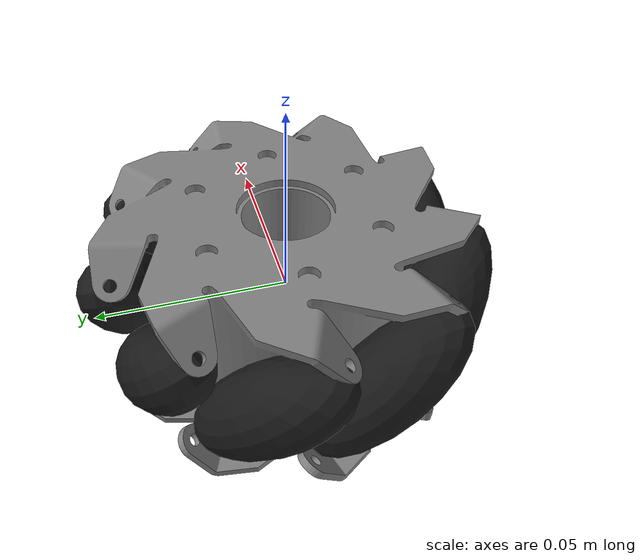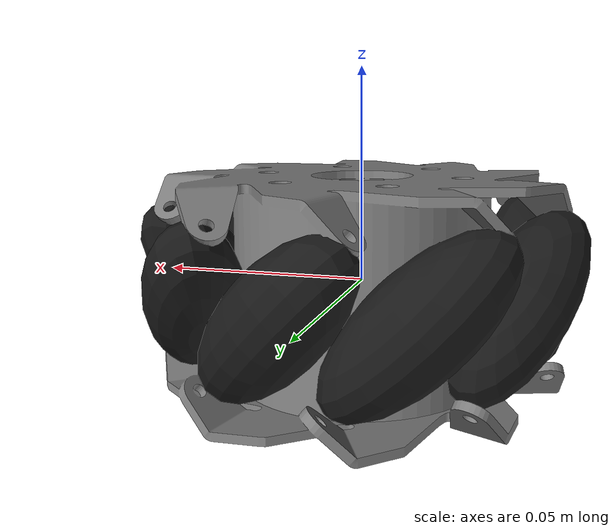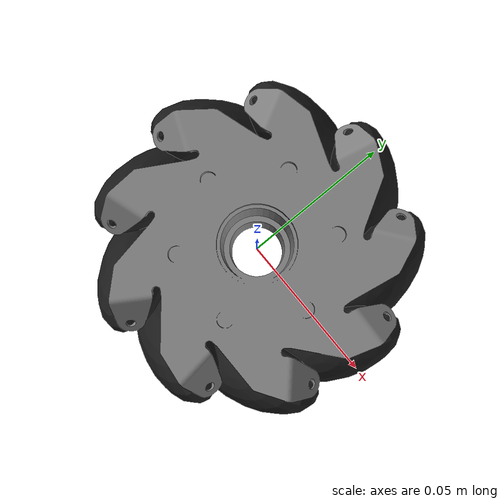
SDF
<?xml version="1.0"?>
<sdf version="1.9">
  <model name="mecanum_wheel_left">
    <link name="wheel_link">
      <pose>0 0 0 0 0 0</pose>
      <inertial>
        <pose>0 0 0 0 0 0</pose>
        <mass>0.045</mass>
        <inertia>
          <ixx>3.44913E-05</ixx>
          <ixy>0</ixy>
          <ixz>0</ixz>
          <iyy>3.44913E-05</iyy>
          <iyz>0</iyz>
          <izz>5.02327E-05</izz>
        </inertia>
      </inertial>
      <collision name="wheel1_collision">
        <pose>0 0 0.0225 0 0 0</pose>
        <geometry>
          <cylinder>
            <radius>0.04725</radius>
            <length>0.005</length>
          </cylinder>
        </geometry>
      </collision>
      <collision name="wheel2_collision">
        <pose>0 0 -0.0225 0 0 0</pose>
        <geometry>
          <cylinder>
            <radius>0.04725</radius>
            <length>0.005</length>
          </cylinder>
        </geometry>
      </collision>
      <visual name="wheel_visual">
        <geometry>
          <mesh>
            <uri>models://mecanum_wheel_left/meshes/mecanum_wheel_frame_left.stl</uri>
          </mesh>
        </geometry>
        <material>
          <ambient>0.5 0.5 0.5</ambient>
          <diffuse>0.5 0.5 0.5</diffuse>
          <specular>0.1 0.1 0.1</specular>
        </material>
      </visual>

    </link>

    <link name="roller_1_link">
      <pose degrees="true">0.040288288 0 0 -45 2 0</pose>
      <inertial>
        <pose>0 0 0 0 0 0</pose>
        <mass>0.015838863</mass>
        <inertia>
          <ixx>2.36316E-06</ixx>
          <ixy>0</ixy>
          <ixz>0</ixz>
          <iyy>2.36316E-06</iyy>
          <iyz>0</iyz>
          <izz>7.66601E-07</izz>
        </inertia>
      </inertial>
      <collision name="collision">
        <pose degrees="true">0 0 0 90 9 0</pose>
        <geometry>
          <sphere>
            <radius>0.011</radius>
          </sphere>
        </geometry>
        <surface>
          <friction>
            <ode>
              <mu>10.0</mu>
              <mu2>10.0</mu2>
            </ode>
          </friction>
        </surface>
      </collision>
      <visual name="visual">
        <pose degrees="true">0 0 0 90 9 0</pose>
        <geometry>
          <ellipsoid>
            <radii>0.011 0.025 0.011</radii>
          </ellipsoid>
        </geometry>
        <material>
          <ambient>0.1 0.1 0.1</ambient>
          <diffuse>0.1 0.1 0.1</diffuse>
          <specular>0.1 0.1 0.1</specular>
        </material>
      </visual>
    </link>
    <joint name="roller_1_joint" type="revolute">
      <child>roller_1_link</child>
      <parent>wheel_link</parent>
      <axis>
        <xyz>0 0 1</xyz>
        <limit>
          <lower>-1.0e16</lower>
          <upper>1.0e16</upper>
        </limit>
        <dynamics>
          <damping>0.0000</damping>
          <friction>0.0001</friction>
        </dynamics>
      </axis>
    </joint>

    <link name="roller_2_link">
      <pose degrees="true">0.030862619 0.025896812 0 -45 2 40</pose>
      <inertial>
        <pose>0 0 0 0 0 0</pose>
        <mass>0.015838863</mass>
        <inertia>
          <ixx>2.36316E-06</ixx>
          <ixy>0</ixy>
          <ixz>0</ixz>
          <iyy>2.36316E-06</iyy>
          <iyz>0</iyz>
          <izz>7.66601E-07</izz>
        </inertia>
      </inertial>
      <collision name="collision">
        <pose degrees="true">0 0 0 90 9 0</pose>
        <geometry>
          <sphere>
            <radius>0.011</radius>
          </sphere>
        </geometry>
        <surface>
          <friction>
            <ode>
              <mu>10.0</mu>
              <mu2>10.0</mu2>
            </ode>
          </friction>
        </surface>
      </collision>
      <visual name="visual">
        <pose degrees="true">0 0 0 90 9 0</pose>
        <geometry>
          <ellipsoid>
            <radii>0.011 0.025 0.011</radii>
          </ellipsoid>
        </geometry>
        <material>
          <ambient>0.1 0.1 0.1</ambient>
          <diffuse>0.1 0.1 0.1</diffuse>
          <specular>0.1 0.1 0.1</specular>
        </material>
      </visual>
    </link>
    <joint name="roller_2_joint" type="revolute">
      <child>roller_2_link</child>
      <parent>wheel_link</parent>
      <axis>
        <xyz>0 0 1</xyz>
        <limit>
          <lower>-1.0e16</lower>
          <upper>1.0e16</upper>
        </limit>
        <dynamics>
          <damping>0.0000</damping>
          <friction>0.0001</friction>
        </dynamics>
      </axis>
    </joint>

    <link name="roller_3_link">
      <pose degrees="true">0.006995988 0.039676218 0 -45 2 80</pose>
      <inertial>
        <pose>0 0 0 0 0 0</pose>
        <mass>0.015838863</mass>
        <inertia>
          <ixx>2.36316E-06</ixx>
          <ixy>0</ixy>
          <ixz>0</ixz>
          <iyy>2.36316E-06</iyy>
          <iyz>0</iyz>
          <izz>7.66601E-07</izz>
        </inertia>
      </inertial>
      <collision name="collision">
        <pose degrees="true">0 0 0 90 9 0</pose>
        <geometry>
          <sphere>
            <radius>0.011</radius>
          </sphere>
        </geometry>
        <surface>
          <friction>
            <ode>
              <mu>10.0</mu>
              <mu2>10.0</mu2>
            </ode>
          </friction>
        </surface>
      </collision>
      <visual name="visual">
        <pose degrees="true">0 0 0 90 9 0</pose>
        <geometry>
          <ellipsoid>
            <radii>0.011 0.025 0.011</radii>
          </ellipsoid>
        </geometry>
        <material>
          <ambient>0.1 0.1 0.1</ambient>
          <diffuse>0.1 0.1 0.1</diffuse>
          <specular>0.1 0.1 0.1</specular>
        </material>
      </visual>
    </link>
    <joint name="roller_3_joint" type="revolute">
      <child>roller_3_link</child>
      <parent>wheel_link</parent>
      <axis>
        <xyz>0 0 1</xyz>
        <limit>
          <lower>-1.0e16</lower>
          <upper>1.0e16</upper>
        </limit>
        <dynamics>
          <damping>0.0000</damping>
          <friction>0.0001</friction>
        </dynamics>
      </axis>
    </joint>

    <link name="roller_4_link">
      <pose degrees="true">-0.020144144 0.034890681 0 -45 2 120</pose>
      <inertial>
        <pose>0 0 0 0 0 0</pose>
        <mass>0.015838863</mass>
        <inertia>
          <ixx>2.36316E-06</ixx>
          <ixy>0</ixy>
          <ixz>0</ixz>
          <iyy>2.36316E-06</iyy>
          <iyz>0</iyz>
          <izz>7.66601E-07</izz>
        </inertia>
      </inertial>
      <collision name="collision">
        <pose degrees="true">0 0 0 90 9 0</pose>
        <geometry>
          <sphere>
            <radius>0.011</radius>
          </sphere>
        </geometry>
        <surface>
          <friction>
            <ode>
              <mu>10.0</mu>
              <mu2>10.0</mu2>
            </ode>
          </friction>
        </surface>
      </collision>
      <visual name="visual">
        <pose degrees="true">0 0 0 90 9 0</pose>
        <geometry>
          <ellipsoid>
            <radii>0.011 0.025 0.011</radii>
          </ellipsoid>
        </geometry>
        <material>
          <ambient>0.1 0.1 0.1</ambient>
          <diffuse>0.1 0.1 0.1</diffuse>
          <specular>0.1 0.1 0.1</specular>
        </material>
      </visual>
    </link>
    <joint name="roller_4_joint" type="revolute">
      <child>roller_4_link</child>
      <parent>wheel_link</parent>
      <axis>
        <xyz>0 0 1</xyz>
        <limit>
          <lower>-1.0e16</lower>
          <upper>1.0e16</upper>
        </limit>
        <dynamics>
          <damping>0.0000</damping>
          <friction>0.0001</friction>
        </dynamics>
      </axis>
    </joint>

    <link name="roller_5_link">
      <pose degrees="true">-0.037858607 0.013779406 0 -45 2 160</pose>
      <inertial>
        <pose>0 0 0 0 0 0</pose>
        <mass>0.015838863</mass>
        <inertia>
          <ixx>2.36316E-06</ixx>
          <ixy>0</ixy>
          <ixz>0</ixz>
          <iyy>2.36316E-06</iyy>
          <iyz>0</iyz>
          <izz>7.66601E-07</izz>
        </inertia>
      </inertial>
      <collision name="collision">
        <pose degrees="true">0 0 0 90 9 0</pose>
        <geometry>
          <sphere>
            <radius>0.011</radius>
          </sphere>
        </geometry>
        <surface>
          <friction>
            <ode>
              <mu>10.0</mu>
              <mu2>10.0</mu2>
            </ode>
          </friction>
        </surface>
      </collision>
      <visual name="visual">
        <pose degrees="true">0 0 0 90 9 0</pose>
        <geometry>
          <ellipsoid>
            <radii>0.011 0.025 0.011</radii>
          </ellipsoid>
        </geometry>
        <material>
          <ambient>0.1 0.1 0.1</ambient>
          <diffuse>0.1 0.1 0.1</diffuse>
          <specular>0.1 0.1 0.1</specular>
        </material>
      </visual>
    </link>
    <joint name="roller_5_joint" type="revolute">
      <child>roller_5_link</child>
      <parent>wheel_link</parent>
      <axis>
        <xyz>0 0 1</xyz>
        <limit>
          <lower>-1.0e16</lower>
          <upper>1.0e16</upper>
        </limit>
        <dynamics>
          <damping>0.0000</damping>
          <friction>0.0001</friction>
        </dynamics>
      </axis>
    </joint>

    <link name="roller_6_link">
      <pose degrees="true">-0.037858607 -0.013779406 0 -45 2 200</pose>
      <inertial>
        <pose>0 0 0 0 0 0</pose>
        <mass>0.015838863</mass>
        <inertia>
          <ixx>2.36316E-06</ixx>
          <ixy>0</ixy>
          <ixz>0</ixz>
          <iyy>2.36316E-06</iyy>
          <iyz>0</iyz>
          <izz>7.66601E-07</izz>
        </inertia>
      </inertial>
      <collision name="collision">
        <pose degrees="true">0 0 0 90 9 0</pose>
        <geometry>
          <sphere>
            <radius>0.011</radius>
          </sphere>
        </geometry>
        <surface>
          <friction>
            <ode>
              <mu>10.0</mu>
              <mu2>10.0</mu2>
            </ode>
          </friction>
        </surface>
      </collision>
      <visual name="visual">
        <pose degrees="true">0 0 0 90 9 0</pose>
        <geometry>
          <ellipsoid>
            <radii>0.011 0.025 0.011</radii>
          </ellipsoid>
        </geometry>
        <material>
          <ambient>0.1 0.1 0.1</ambient>
          <diffuse>0.1 0.1 0.1</diffuse>
          <specular>0.1 0.1 0.1</specular>
        </material>
      </visual>
    </link>
    <joint name="roller_6_joint" type="revolute">
      <child>roller_6_link</child>
      <parent>wheel_link</parent>
      <axis>
        <xyz>0 0 1</xyz>
        <limit>
          <lower>-1.0e16</lower>
          <upper>1.0e16</upper>
        </limit>
        <dynamics>
          <damping>0.0000</damping>
          <friction>0.0001</friction>
        </dynamics>
      </axis>
    </joint>

    <link name="roller_7_link">
      <pose degrees="true">-0.020144144 -0.034890681 0 -45 2 240</pose>
      <inertial>
        <pose>0 0 0 0 0 0</pose>
        <mass>0.015838863</mass>
        <inertia>
          <ixx>2.36316E-06</ixx>
          <ixy>0</ixy>
          <ixz>0</ixz>
          <iyy>2.36316E-06</iyy>
          <iyz>0</iyz>
          <izz>7.66601E-07</izz>
        </inertia>
      </inertial>
      <collision name="collision">
        <pose degrees="true">0 0 0 90 9 0</pose>
        <geometry>
          <sphere>
            <radius>0.011</radius>
          </sphere>
        </geometry>
        <surface>
          <friction>
            <ode>
              <mu>10.0</mu>
              <mu2>10.0</mu2>
            </ode>
          </friction>
        </surface>
      </collision>
      <visual name="visual">
        <pose degrees="true">0 0 0 90 9 0</pose>
        <geometry>
          <ellipsoid>
            <radii>0.011 0.025 0.011</radii>
          </ellipsoid>
        </geometry>
        <material>
          <ambient>0.1 0.1 0.1</ambient>
          <diffuse>0.1 0.1 0.1</diffuse>
          <specular>0.1 0.1 0.1</specular>
        </material>
      </visual>
    </link>
    <joint name="roller_7_joint" type="revolute">
      <child>roller_7_link</child>
      <parent>wheel_link</parent>
      <axis>
        <xyz>0 0 1</xyz>
        <limit>
          <lower>-1.0e16</lower>
          <upper>1.0e16</upper>
        </limit>
        <dynamics>
          <damping>0.0000</damping>
          <friction>0.0001</friction>
        </dynamics>
      </axis>
    </joint>

    <link name="roller_8_link">
      <pose degrees="true">0.006995988 -0.039676218 0 -45 2 280</pose>
      <inertial>
        <pose>0 0 0 0 0 0</pose>
        <mass>0.015838863</mass>
        <inertia>
          <ixx>2.36316E-06</ixx>
          <ixy>0</ixy>
          <ixz>0</ixz>
          <iyy>2.36316E-06</iyy>
          <iyz>0</iyz>
          <izz>7.66601E-07</izz>
        </inertia>
      </inertial>
      <collision name="collision">
        <pose degrees="true">0 0 0 90 9 0</pose>
        <geometry>
          <sphere>
            <radius>0.011</radius>
          </sphere>
        </geometry>
        <surface>
          <friction>
            <ode>
              <mu>10.0</mu>
              <mu2>10.0</mu2>
            </ode>
          </friction>
        </surface>
      </collision>
      <visual name="visual">
        <pose degrees="true">0 0 0 90 9 0</pose>
        <geometry>
          <ellipsoid>
            <radii>0.011 0.025 0.011</radii>
          </ellipsoid>
        </geometry>
        <material>
          <ambient>0.1 0.1 0.1</ambient>
          <diffuse>0.1 0.1 0.1</diffuse>
          <specular>0.1 0.1 0.1</specular>
        </material>
      </visual>
    </link>
    <joint name="roller_8_joint" type="revolute">
      <child>roller_8_link</child>
      <parent>wheel_link</parent>
      <axis>
        <xyz>0 0 1</xyz>
        <limit>
          <lower>-1.0e16</lower>
          <upper>1.0e16</upper>
        </limit>
        <dynamics>
          <damping>0.0000</damping>
          <friction>0.0001</friction>
        </dynamics>
      </axis>
    </joint>

    <link name="roller_9_link">
      <pose degrees="true">0.030862619 -0.025896812 0 -45 2 320</pose>
      <inertial>
        <pose>0 0 0 0 0 0</pose>
        <mass>0.015838863</mass>
        <inertia>
          <ixx>2.36316E-06</ixx>
          <ixy>0</ixy>
          <ixz>0</ixz>
          <iyy>2.36316E-06</iyy>
          <iyz>0</iyz>
          <izz>7.66601E-07</izz>
        </inertia>
      </inertial>
      <collision name="collision">
        <pose degrees="true">0 0 0 90 9 0</pose>
        <geometry>
          <sphere>
            <radius>0.011</radius>
          </sphere>
        </geometry>
        <surface>
          <friction>
            <ode>
              <mu>10.0</mu>
              <mu2>10.0</mu2>
            </ode>
          </friction>
        </surface>
      </collision>
      <visual name="visual">
        <pose degrees="true">0 0 0 90 9 0</pose>
        <geometry>
          <ellipsoid>
            <radii>0.011 0.025 0.011</radii>
          </ellipsoid>
        </geometry>
        <material>
          <ambient>0.1 0.1 0.1</ambient>
          <diffuse>0.1 0.1 0.1</diffuse>
          <specular>0.1 0.1 0.1</specular>
        </material>
      </visual>
    </link>
    <joint name="roller_9_joint" type="revolute">
      <child>roller_9_link</child>
      <parent>wheel_link</parent>
      <axis>
        <xyz>0 0 1</xyz>
        <limit>
          <lower>-1.0e16</lower>
          <upper>1.0e16</upper>
        </limit>
        <dynamics>
          <damping>0.0000</damping>
          <friction>0.0001</friction>
        </dynamics>
      </axis>
    </joint>

  </model>
</sdf>
